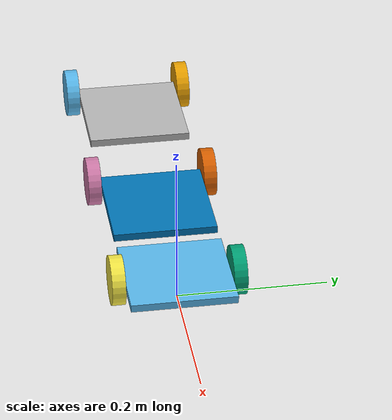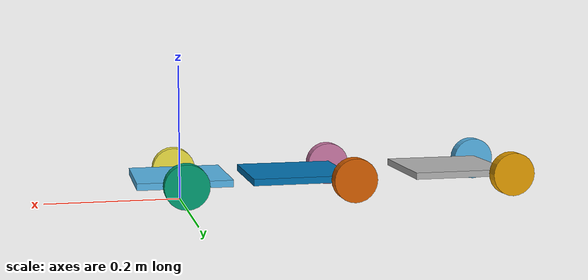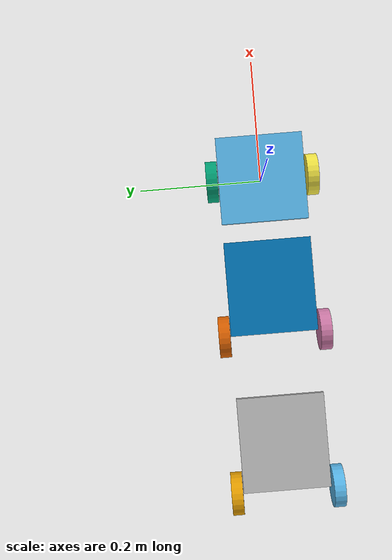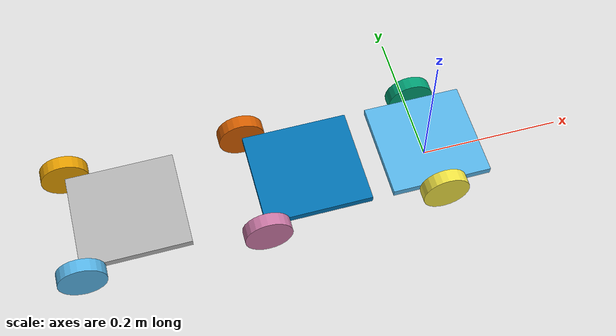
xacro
<?xml version="1.0"?>
<robot name="road_train" xmlns:xacro="http://www.ros.org/wiki/xacro">

  <!-- ==================== ARGUMENTS ==================== -->
  <xacro:arg name="standalone" default="true"/>

  <!-- ==================== GEOMETRY (TODO: measured values) ==================== -->
  <!-- Replace these four with the numbers from MEASUREMENT_SHEET.md. -->
  <xacro:property name="d0" value="0.100"/>
  <xacro:property name="l1" value="0.150"/>
  <xacro:property name="d1" value="0.100"/>
  <xacro:property name="l2" value="0.150"/>

  <xacro:property name="axle_offset_x" value="0.0"/>

  <!-- ==================== HARDWARE ==================== -->
  <xacro:property name="wheel_radius" value="0.033"/>   <!-- TB3 wheel -->
  <xacro:property name="wheel_width"  value="0.018"/>
  <xacro:property name="track"        value="0.160"/>   <!-- TODO: measure -->
  <xacro:property name="plate_w"      value="0.140"/>
  <xacro:property name="plate_t"      value="0.010"/>

  <xacro:property name="m_trailer" value="0.30"/>       <!-- TODO: weigh -->
  <xacro:property name="m_wheel"   value="0.03"/>

  <!-- Passive joint behaviour. Some damping is needed, otherwise the hitch
       chatters in Gazebo. Limit = how far the joint can fold before the
       printed parts collide. -->
  <xacro:property name="hitch_limit"    value="1.40"/>   <!-- rad, ~80 deg -->
  <xacro:property name="hitch_damping"  value="0.002"/>
  <xacro:property name="hitch_friction" value="0.001"/>

  <xacro:property name="PI" value="3.14159265359"/>

  <!-- ==================== INERTIA HELPERS ==================== -->
  <xacro:macro name="box_inertia" params="m x y z">
    <inertial>
      <mass value="${m}"/>
      <inertia ixx="${m*(y*y+z*z)/12}" iyy="${m*(x*x+z*z)/12}" izz="${m*(x*x+y*y)/12}"
               ixy="0" ixz="0" iyz="0"/>
    </inertial>
  </xacro:macro>

  <xacro:macro name="wheel_inertia" params="m r w">
    <inertial>
      <mass value="${m}"/>
      <inertia ixx="${m*(3*r*r+w*w)/12}" iyy="${m*(3*r*r+w*w)/12}" izz="${m*r*r/2}"
               ixy="0" ixz="0" iyz="0"/>
    </inertial>
  </xacro:macro>

  <!-- ==================== A PASSIVE WHEEL ==================== -->
  <xacro:macro name="passive_wheel" params="name parent x y">
    <link name="${name}">
      <visual>
        <origin rpy="${PI/2} 0 0"/>
        <geometry><cylinder radius="${wheel_radius}" length="${wheel_width}"/></geometry>
      </visual>
      <collision>
        <origin rpy="${PI/2} 0 0"/>
        <geometry><cylinder radius="${wheel_radius}" length="${wheel_width}"/></geometry>
      </collision>
      <xacro:wheel_inertia m="${m_wheel}" r="${wheel_radius}" w="${wheel_width}"/>
    </link>

    <joint name="${name}_joint" type="continuous">
      <parent link="${parent}"/>
      <child  link="${name}"/>
      <origin xyz="${x} ${y} 0"/>
      <axis xyz="0 1 0"/>
      <dynamics damping="0.0005" friction="0.0005"/>
    </joint>

    <gazebo reference="${name}">
      <!-- high lateral friction: the wheel must not slide sideways, that is
           what makes the system nonholonomic in the first place -->
      <mu1>1.0</mu1>
      <mu2>1.0</mu2>
      <kp>1000000.0</kp>
      <kd>10.0</kd>
      <minDepth>0.001</minDepth>
    </gazebo>
  </xacro:macro>

  <!-- ==================== A TRAILER ==================== -->
  <!-- The trailer frame has its origin AT THE HITCH, x pointing forward.
       Its axle sits at x = -l_axle, the next hitch at x = -(l_axle + d_next). -->
  <xacro:macro name="trailer" params="name parent hitch_x l_axle">
    <link name="${name}_link">
      <visual>
        <origin xyz="${-l_axle/2} 0 0"/>
        <geometry><box size="${l_axle} ${plate_w} ${plate_t}"/></geometry>
      </visual>
      <collision>
        <origin xyz="${-l_axle/2} 0 0"/>
        <geometry><box size="${l_axle} ${plate_w} ${plate_t}"/></geometry>
      </collision>
      <xacro:box_inertia m="${m_trailer}" x="${l_axle}" y="${plate_w}" z="${plate_t}"/>
    </link>

    <joint name="${name}_hitch" type="revolute">
      <parent link="${parent}"/>
      <child  link="${name}_link"/>
      <origin xyz="${hitch_x} 0 0"/>
      <axis xyz="0 0 1"/>
      <limit lower="${-hitch_limit}" upper="${hitch_limit}" effort="0" velocity="100"/>
      <dynamics damping="${hitch_damping}" friction="${hitch_friction}"/>
    </joint>

    <xacro:passive_wheel name="${name}_wheel_left"  parent="${name}_link"
                         x="${-l_axle}" y="${ track/2}"/>
    <xacro:passive_wheel name="${name}_wheel_right" parent="${name}_link"
                         x="${-l_axle}" y="${-track/2}"/>
  </xacro:macro>

  <!-- ==================== TRACTOR ==================== -->
  <xacro:if value="$(arg standalone)">
    <!-- Minimal stand-in so the trailers can be tested without any ROS
         package installed. Not a TurtleBot3 - no diff drive, no sensors. -->
    <link name="base_footprint"/>
    <link name="base_link">
      <visual>
        <geometry><box size="0.140 ${plate_w} ${plate_t}"/></geometry>
      </visual>
      <collision>
        <geometry><box size="0.140 ${plate_w} ${plate_t}"/></geometry>
      </collision>
      <xacro:box_inertia m="1.0" x="0.140" y="${plate_w}" z="${plate_t}"/>
    </link>
    <joint name="base_joint" type="fixed">
      <parent link="base_footprint"/>
      <child  link="base_link"/>
      <origin xyz="0 0 ${wheel_radius}"/>
    </joint>
    <xacro:passive_wheel name="tractor_wheel_left"  parent="base_link" x="0" y="${ track/2}"/>
    <xacro:passive_wheel name="tractor_wheel_right" parent="base_link" x="0" y="${-track/2}"/>
  </xacro:if>

  <xacro:unless value="$(arg standalone)">
    <!-- The real robot. Verify the path and the link names against the
         version installed on the lab machine before relying on this. -->
    <xacro:include filename="$(find turtlebot3_description)/urdf/turtlebot3_burger.urdf.xacro"/>
  </xacro:unless>

  <!-- ==================== THE TRAIN ==================== -->
  <xacro:trailer name="trailer1" parent="base_link"
                 hitch_x="${-(d0 - axle_offset_x)}" l_axle="${l1}"/>

  <xacro:trailer name="trailer2" parent="trailer1_link"
                 hitch_x="${-(l1 + d1)}" l_axle="${l2}"/>

  <!-- ==================== GROUND-TRUTH POSE OF EACH TRAILER ==================== -->
  <gazebo>
    <plugin name="trailer1_p3d" filename="libgazebo_ros_p3d.so">
      <ros><remapping>odom:=/trailer1/odom</remapping></ros>
      <body_name>trailer1_link</body_name>
      <frame_name>world</frame_name>
      <update_rate>100.0</update_rate>
    </plugin>
    <plugin name="trailer2_p3d" filename="libgazebo_ros_p3d.so">
      <ros><remapping>odom:=/trailer2/odom</remapping></ros>
      <body_name>trailer2_link</body_name>
      <frame_name>world</frame_name>
      <update_rate>100.0</update_rate>
    </plugin>
  </gazebo>

</robot>
